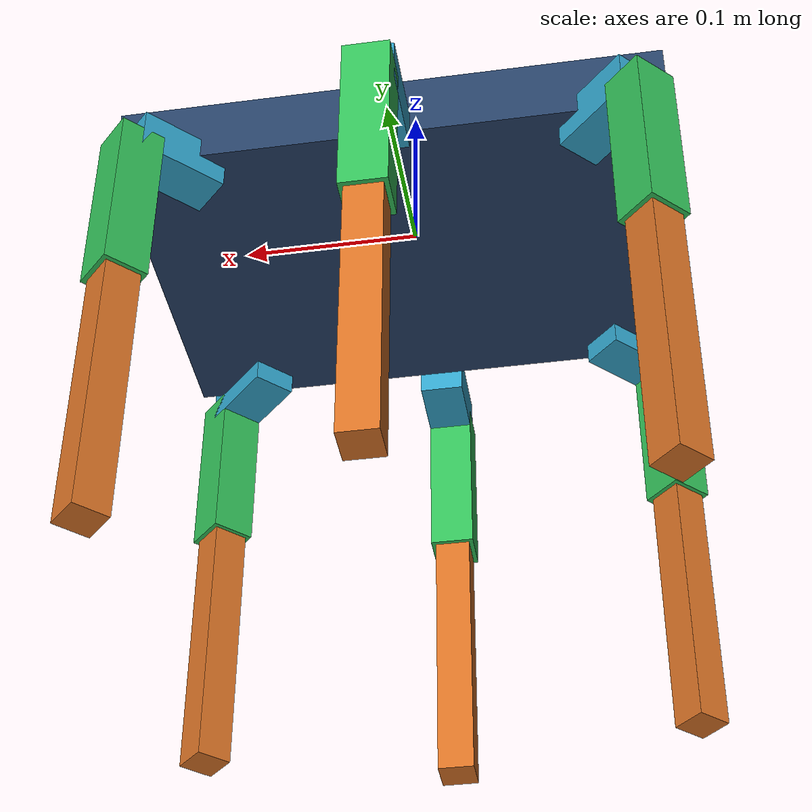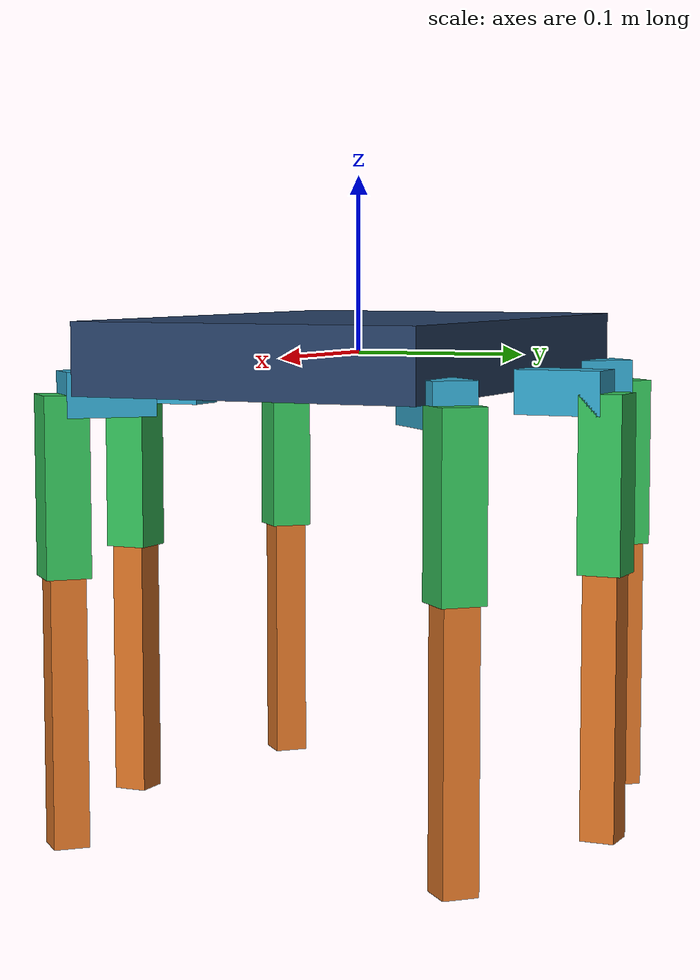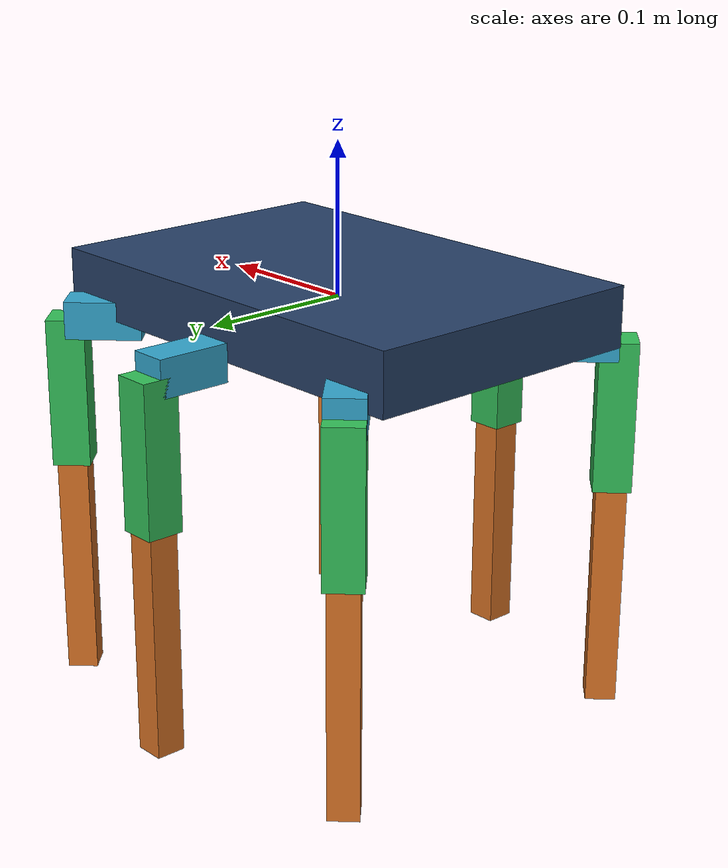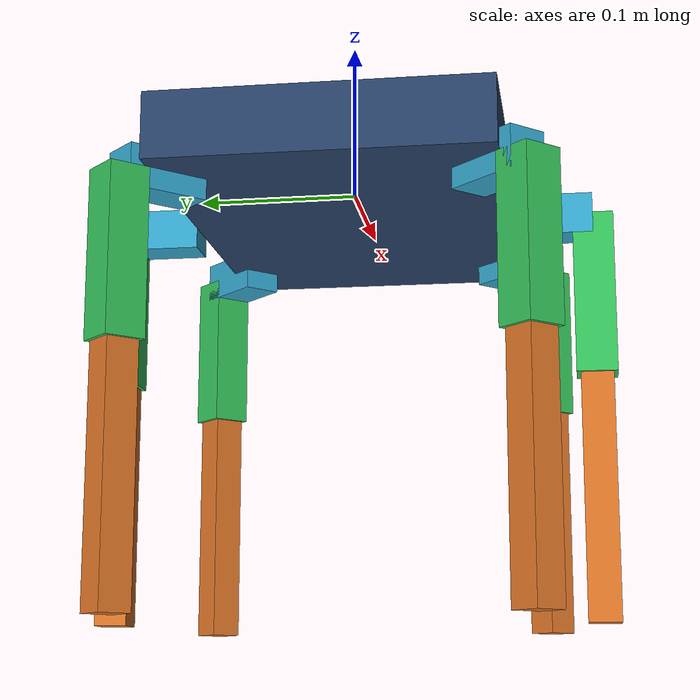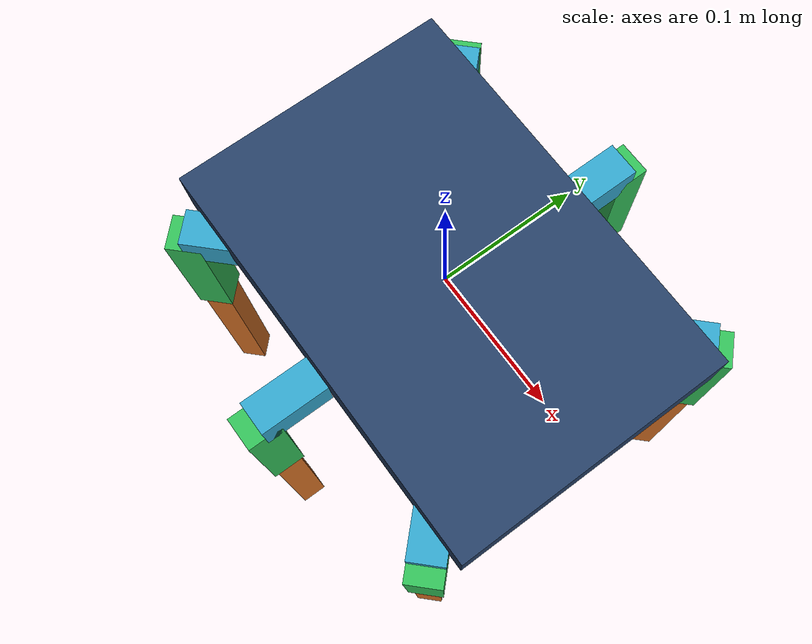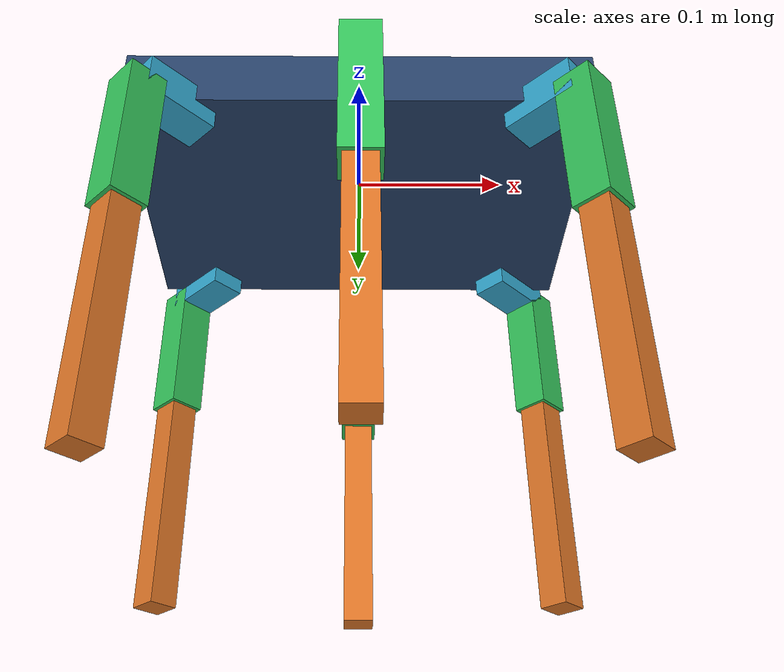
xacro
<?xml version="1.0"?>
<robot name="hexapod" xmlns:xacro="http://www.ros.org/wiki/xacro">

  <!-- PARAMETER ROBOT                            -->

  <xacro:property name="body_length" value="0.30"/>
  <xacro:property name="body_width" value="0.20"/>
  <xacro:property name="body_height" value="0.04"/>

  <xacro:property name="coxa_length" value="0.05"/>
  <xacro:property name="femur_length" value="0.10"/>
  <xacro:property name="tibia_length" value="0.15"/>

  <xacro:property name="body_z" value="0.28"/>

  <!-- MATERIAL                                   -->

  <material name="body_color">
    <color rgba="0.15 0.25 0.40 1.0"/>
  </material>

  <material name="coxa_color">
    <color rgba="0.20 0.65 0.80 1.0"/>
  </material>

  <material name="femur_color">
    <color rgba="0.20 0.75 0.35 1.0"/>
  </material>

  <material name="tibia_color">
    <color rgba="0.85 0.45 0.15 1.0"/>
  </material>

  <!-- MAIN BODY                                  -->

  <link name="base_link">

    <visual>
      <origin xyz="0 0 0" rpy="0 0 0"/>

      <geometry>
        <box size="${body_length} ${body_width} ${body_height}"/>
      </geometry>

      <material name="body_color"/>
    </visual>

    <collision>
      <origin xyz="0 0 0" rpy="0 0 0"/>

      <geometry>
        <box size="${body_length} ${body_width} ${body_height}"/>
      </geometry>
    </collision>

    <inertial>
      <origin xyz="0 0 0" rpy="0 0 0"/>
      <mass value="2.0"/>

      <inertia
        ixx="0.007"
        ixy="0.0"
        ixz="0.0"
        iyy="0.016"
        iyz="0.0"
        izz="0.021"/>
    </inertial>

  </link>

  <!-- LEG MACRO                                  -->

  <xacro:macro
    name="hexapod_leg"
    params="name x y yaw">

    <!-- COXA LINK -->

    <link name="${name}_coxa_link">

      <visual>
        <origin
          xyz="${coxa_length / 2} 0 0"
          rpy="0 0 0"/>

        <geometry>
          <box size="${coxa_length} 0.025 0.025"/>
        </geometry>

        <material name="coxa_color"/>
      </visual>

      <collision>
        <origin
          xyz="${coxa_length / 2} 0 0"
          rpy="0 0 0"/>

        <geometry>
          <box size="${coxa_length} 0.025 0.025"/>
        </geometry>
      </collision>

      <inertial>
        <origin xyz="${coxa_length / 2} 0 0"/>
        <mass value="0.10"/>

        <inertia
          ixx="0.00001"
          ixy="0.0"
          ixz="0.0"
          iyy="0.00003"
          iyz="0.0"
          izz="0.00003"/>
      </inertial>

    </link>

    <!-- COXA JOINT -->

    <joint name="${name}_coxa_joint" type="revolute">

      <parent link="base_link"/>
      <child link="${name}_coxa_link"/>

      <origin xyz="${x} ${y} -0.02" rpy="0 0 ${yaw}"/>

      <axis xyz="0 0 1"/>

      <limit
        lower="-0.7854"
        upper="0.7854"
        effort="2.0"
        velocity="2.0"/>

    </joint>

    <!-- FEMUR LINK -->

    <link name="${name}_femur_link">

      <visual>
        <origin xyz="0 0 ${-femur_length / 2}"/>

        <geometry>
          <box size="0.025 0.025 ${femur_length}"/>
        </geometry>

        <material name="femur_color"/>
      </visual>

      <collision>
        <origin xyz="0 0 ${-femur_length / 2}"/>

        <geometry>
          <box size="0.025 0.025 ${femur_length}"/>
        </geometry>
      </collision>

      <inertial>
        <origin xyz="0 0 ${-femur_length / 2}"/>
        <mass value="0.15"/>

        <inertia
          ixx="0.00013"
          ixy="0.0"
          ixz="0.0"
          iyy="0.00013"
          iyz="0.0"
          izz="0.00001"/>
      </inertial>

    </link>

    <!-- FEMUR JOINT -->

    <joint name="${name}_femur_joint" type="revolute">

      <parent link="${name}_coxa_link"/>
      <child link="${name}_femur_link"/>

      <origin xyz="${coxa_length} 0 0" rpy="0 0 0"/>

      <axis xyz="0 1 0"/>

      <limit
        lower="-1.0472"
        upper="1.0472"
        effort="3.0"
        velocity="2.0"/>

    </joint>

    <!-- TIBIA LINK -->

    <link name="${name}_tibia_link">

      <visual>
        <origin xyz="0 0 ${-tibia_length / 2}"/>

        <geometry>
          <box size="0.020 0.020 ${tibia_length}"/>
        </geometry>

        <material name="tibia_color"/>
      </visual>

      <collision>
        <origin xyz="0 0 ${-tibia_length / 2}"/>

        <geometry>
          <box size="0.020 0.020 ${tibia_length}"/>
        </geometry>
      </collision>

      <inertial>
        <origin xyz="0 0 ${-tibia_length / 2}"/>
        <mass value="0.10"/>

        <inertia
          ixx="0.00019"
          ixy="0.0"
          ixz="0.0"
          iyy="0.00019"
          iyz="0.0"
          izz="0.00001"/>
      </inertial>

    </link>

    <!-- TIBIA JOINT -->

    <joint name="${name}_tibia_joint" type="revolute">

      <parent link="${name}_femur_link"/>
      <child link="${name}_tibia_link"/>

      <origin xyz="0 0 ${-femur_length}" rpy="0 0 0"/>

      <axis xyz="0 1 0"/>

      <limit
        lower="-1.5708"
        upper="1.5708"
        effort="3.0"
        velocity="2.0"/>

    </joint>

    <!-- FOOT FRAME -->

    <link name="${name}_foot"/>

    <joint name="${name}_foot_fixed_joint" type="fixed">

      <parent link="${name}_tibia_link"/>
      <child link="${name}_foot"/>

      <origin xyz="0 0 ${-tibia_length}" rpy="0 0 0"/>

    </joint>

  </xacro:macro>

  <!-- SIX LEGS                                   -->

  <!-- LEFT SIDE -->

  <xacro:hexapod_leg
    name="front_left"
    x="0.10" y="0.08" yaw="0.7854"/>

  <xacro:hexapod_leg
    name="middle_left"
    x="0.0" y="0.10" yaw="1.5708"/>

  <xacro:hexapod_leg
    name="rear_left"
    x="-0.10" y="0.08" yaw="2.3562"/>

  <!-- RIGHT SIDE -->

  <xacro:hexapod_leg
    name="front_right"
    x="0.10" y="-0.08" yaw="-0.7854"/>

  <xacro:hexapod_leg
    name="middle_right"
    x="0.0" y="-0.10" yaw="-1.5708"/>

  <xacro:hexapod_leg
    name="rear_right"
    x="-0.10" y="-0.08" yaw="-2.3562"/>

</robot>
